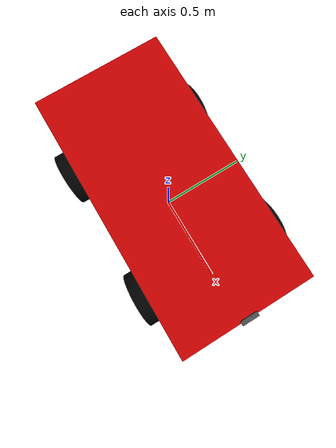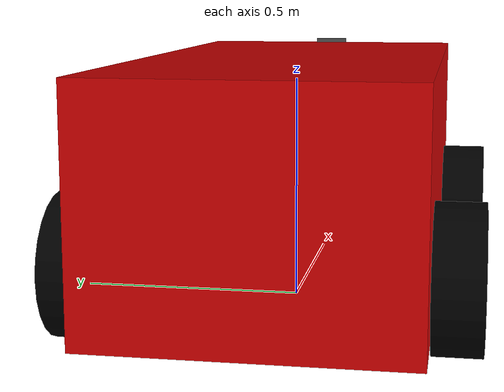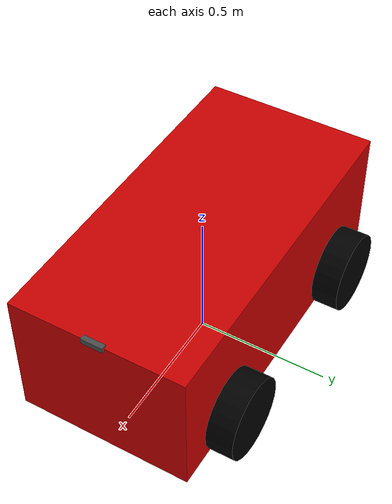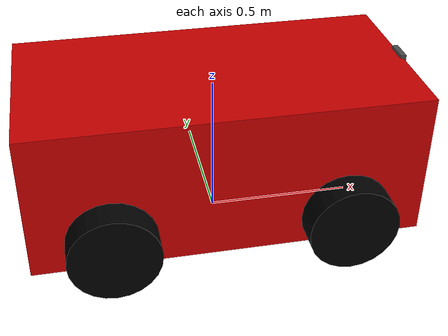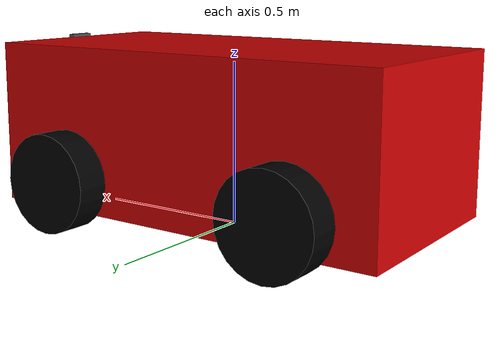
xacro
<?xml version="1.0" ?>
<robot name="striker_bot" xmlns:xacro="http://ros.org/wiki/xacro">
  <xacro:property name="chassis_length" value="1.30"/>
  <xacro:property name="chassis_width" value="0.65"/>
  <xacro:property name="chassis_height" value="0.50"/>
  <xacro:property name="chassis_mass" value="150.0"/>

  <xacro:property name="wheel_radius" value="0.15"/>
  <xacro:property name="wheel_width" value="0.10"/>
  <xacro:property name="wheel_mass" value="5.0"/>

  <xacro:property name="wheel_separation_length" value="0.77"/>
  <xacro:property name="wheel_separation_width" value="0.75"/>
  <xacro:property name="wheel_z_offset" value="-0.15"/>

  <material name="red"><color rgba="0.8 0.0 0.0 1.0"/></material>
  <material name="black"><color rgba="0.0 0.0 0.0 1.0"/></material>
  <material name="dark"><color rgba="0.3 0.3 0.3 1.0"/></material>

  <xacro:macro name="box_inertia" params="m w h d">
    <inertial>
      <origin xyz="0 0 0" rpy="0 0 0"/>
      <mass value="${m}"/>
      <inertia ixx="${(m/12) * (h*h + d*d)}" ixy="0.0" ixz="0.0"
               iyy="${(m/12) * (w*w + d*d)}" iyz="0.0"
               izz="${(m/12) * (w*w + h*h)}"/>
    </inertial>
  </xacro:macro>

  <xacro:macro name="cylinder_inertia" params="m r h">
    <inertial>
      <origin xyz="0 0 0" rpy="0 0 0"/>
      <mass value="${m}"/>
      <inertia ixx="${(m/12) * (3*r*r + h*h)}" ixy="0.0" ixz="0.0"
               iyy="${(m/12) * (3*r*r + h*h)}" iyz="0.0"
               izz="${(m/2) * (r*r)}"/>
    </inertial>
  </xacro:macro>

  <link name="base_footprint"/>

  <joint name="base_joint" type="fixed">
    <parent link="base_footprint"/>
    <child link="base_link"/>
    <origin xyz="0 0 ${wheel_radius - wheel_z_offset}" rpy="0 0 0"/>
  </joint>

  <link name="base_link">
    <visual>
      <geometry><box size="${chassis_length} ${chassis_width} ${chassis_height}"/></geometry>
      <material name="red"/>
    </visual>
    <collision>
      <geometry><box size="${chassis_length} ${chassis_width} ${chassis_height}"/></geometry>
    </collision>
    <xacro:box_inertia m="${chassis_mass}" w="${chassis_width}" h="${chassis_height}" d="${chassis_length}"/>
  </link>

  <link name="gps_link"/>
  <joint name="gps_joint" type="fixed">
    <parent link="base_link"/>
    <child link="gps_link"/>
    <origin xyz="0.44 0.44 0.06" rpy="0 0 0"/>
  </joint>

  <link name="imu_link"/>
  <joint name="imu_joint" type="fixed">
    <parent link="base_link"/>
    <child link="imu_link"/>
    <origin xyz="0 0 0.068" rpy="0 0 0"/>
  </joint>

  <link name="camera_link">
    <visual>
      <geometry><box size="0.02 0.08 0.02"/></geometry>
      <material name="dark"/>
    </visual>
  </link>
  <joint name="camera_joint" type="fixed">
    <parent link="base_link"/>
    <child link="camera_link"/>
    <origin xyz="${chassis_length/2} 0 ${chassis_height/2}" rpy="0 0 0"/>
  </joint>

  <link name="camera_link_optical"/>
  <joint name="camera_optical_joint" type="fixed">
    <parent link="camera_link"/>
    <child link="camera_link_optical"/>
    <origin xyz="0 0 0" rpy="${-pi/2} 0 ${-pi/2}"/>
  </joint>

  <xacro:macro name="wheel" params="prefix x_reflect y_reflect">
    <link name="${prefix}_wheel">
      <visual>
        <origin xyz="0 0 0" rpy="${pi/2} 0 0"/>
        <geometry><cylinder radius="${wheel_radius}" length="${wheel_width}"/></geometry>
        <material name="black"/>
      </visual>
      <collision>
        <origin xyz="0 0 0" rpy="${pi/2} 0 0"/>
        <geometry><cylinder radius="${wheel_radius}" length="${wheel_width}"/></geometry>
      </collision>
      <xacro:cylinder_inertia m="${wheel_mass}" r="${wheel_radius}" h="${wheel_width}"/>
    </link>

    <joint name="${prefix}_wheel_joint" type="continuous">
      <parent link="base_link"/>
      <child link="${prefix}_wheel"/>
      <origin xyz="${x_reflect * wheel_separation_length/2} ${y_reflect * wheel_separation_width/2} ${wheel_z_offset}" rpy="0 0 0"/>
      <axis xyz="0 1 0"/>
    </joint>

    <gazebo reference="${prefix}_wheel">
      <mu1>3.0</mu1>  <!-- GREATLY increased friction -->
      <mu2>3.0</mu2>
      <kp>1000000.0</kp>
      <kd>1000.0</kd>  <!-- Increased damping -->
      <minDepth>0.001</minDepth>
      <maxVel>0.5</maxVel>
      <fdir1>1 0 0</fdir1>
    </gazebo>
  </xacro:macro>

  <xacro:wheel prefix="front_left" x_reflect="1" y_reflect="1"/>
  <xacro:wheel prefix="front_right" x_reflect="1" y_reflect="-1"/>
  <xacro:wheel prefix="rear_left" x_reflect="-1" y_reflect="1"/>
  <xacro:wheel prefix="rear_right" x_reflect="-1" y_reflect="-1"/>

  <!-- CORRECTED: Drastically reduced torque values -->
  <gazebo>
    <plugin name="skid_steer_drive" filename="libgazebo_ros_diff_drive.so">
      <ros>
        <remapping>cmd_vel:=cmd_vel</remapping>
        <remapping>odom:=odom</remapping>
      </ros>
      <update_rate>50</update_rate>
      <num_wheel_pairs>2</num_wheel_pairs>

      <left_joint>front_left_wheel_joint</left_joint>
      <right_joint>front_right_wheel_joint</right_joint>
      <left_joint>rear_left_wheel_joint</left_joint>
      <right_joint>rear_right_wheel_joint</right_joint>

      <wheel_separation>${wheel_separation_width}</wheel_separation>
      <wheel_diameter>${2*wheel_radius}</wheel_diameter>

      <!-- DRASTICALLY REDUCED: Was 1000, now 5 -->
      <max_wheel_torque>5</max_wheel_torque>
      <max_wheel_acceleration>0.1</max_wheel_acceleration>
      <max_wheel_speed>0.5</max_wheel_speed>

      <publish_odom>true</publish_odom>
      <publish_odom_tf>true</publish_odom_tf>
      <publish_wheel_tf>true</publish_wheel_tf>
      <publish_wheel_joint_state>true</publish_wheel_joint_state>

      <robot_base_frame>base_footprint</robot_base_frame>
      <odometry_frame>odom</odometry_frame>
      <odometry_source>world</odometry_source>
    </plugin>
  </gazebo>

  <!-- GPS with initial coordinates -->
  <gazebo reference="gps_link">
    <sensor name="gps_sensor" type="gps">
      <always_on>true</always_on>
      <update_rate>10</update_rate>
      <plugin name="gps_controller" filename="libgazebo_ros_gps_sensor.so">
        <ros>
          <remapping>~/out:=/gps/fix</remapping>
        </ros>
        <initial_latitude>37.7749</initial_latitude>
        <initial_longitude>-122.4194</initial_longitude>
        <initial_altitude>0.0</initial_altitude>
        <frame_id>gps_link</frame_id>
      </plugin>
    </sensor>
  </gazebo>

  <gazebo reference="camera_link">
    <sensor type="camera" name="realsense">
      <update_rate>30.0</update_rate>
      <visualize>true</visualize>
      <camera name="head">
        <horizontal_fov>1.3962634</horizontal_fov>
        <image>
          <width>640</width>
          <height>480</height>
          <format>R8G8B8</format>
        </image>
        <clip>
          <near>0.02</near>
          <far>300</far>
        </clip>
      </camera>
      <plugin name="camera_controller" filename="libgazebo_ros_camera.so">
        <frame_name>camera_link_optical</frame_name>
      </plugin>
    </sensor>
  </gazebo>
</robot>
